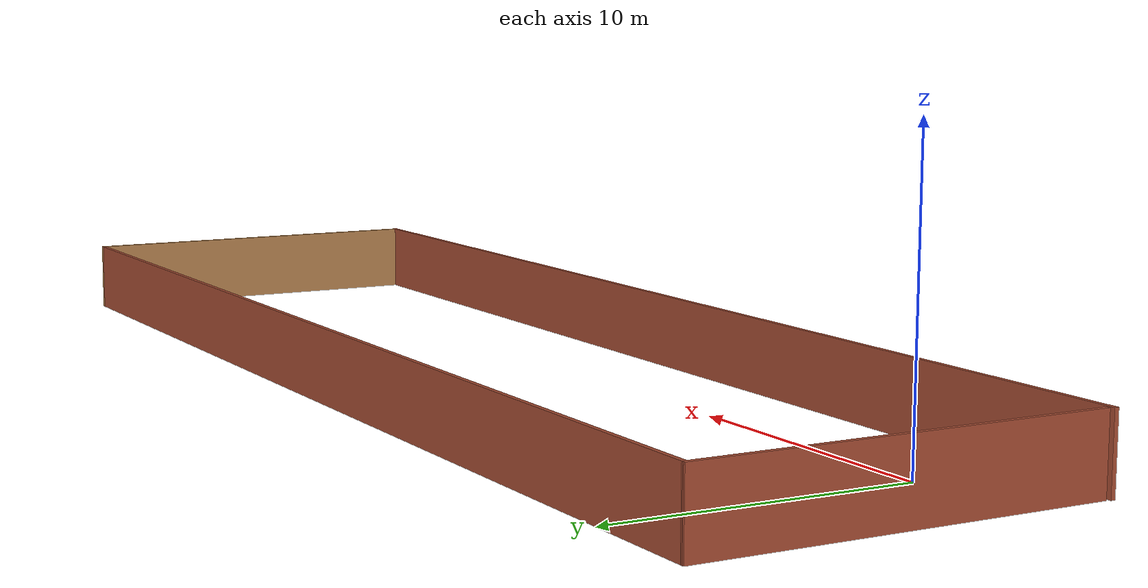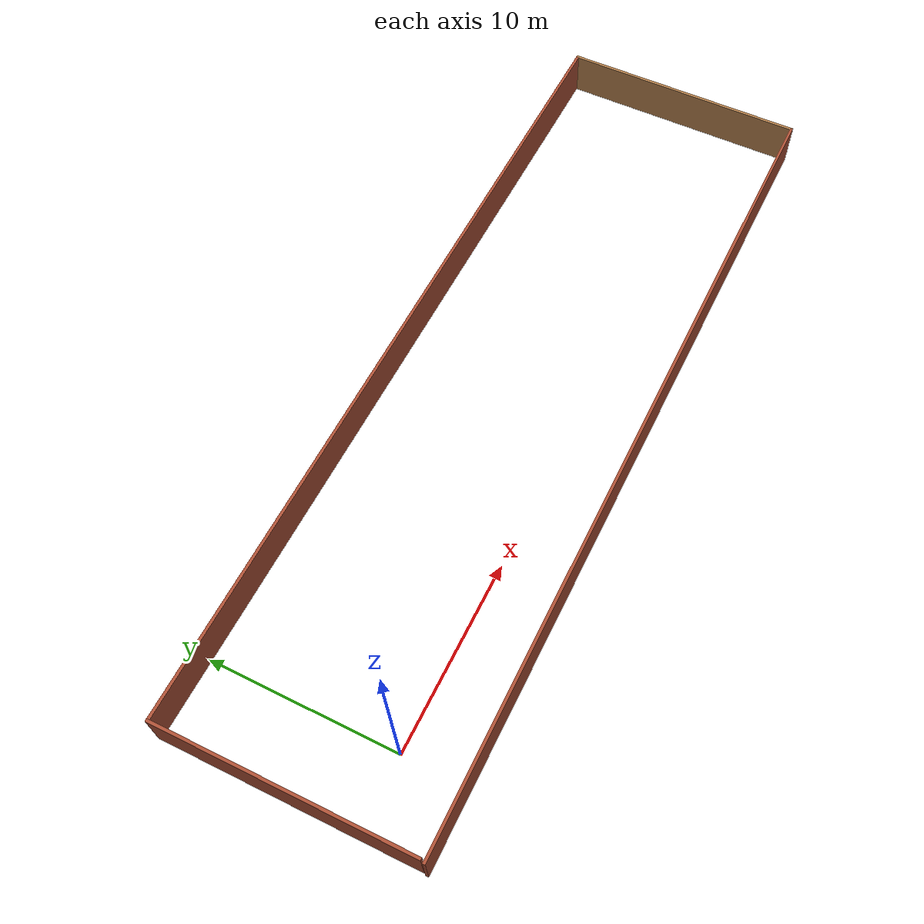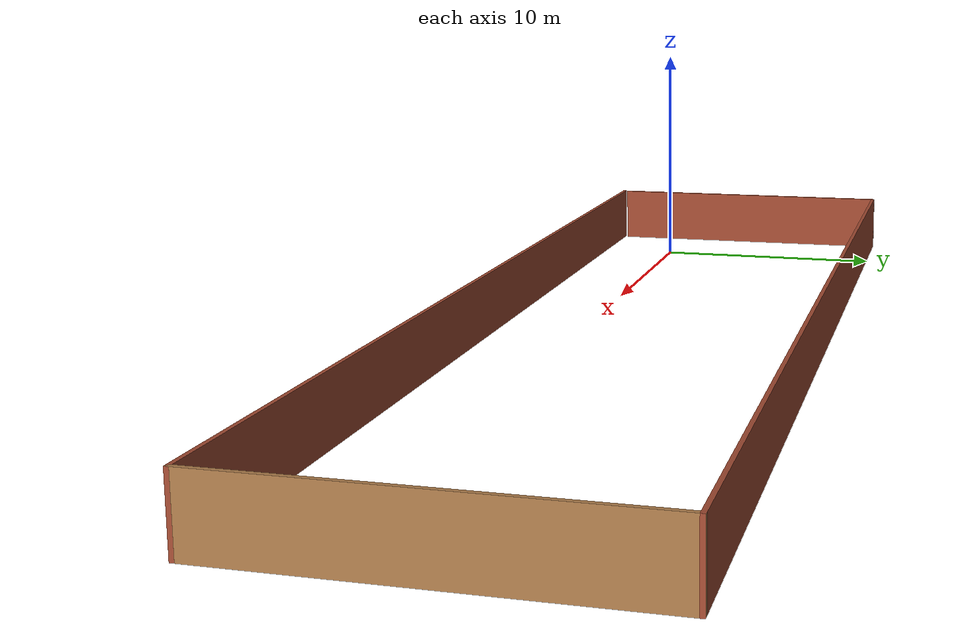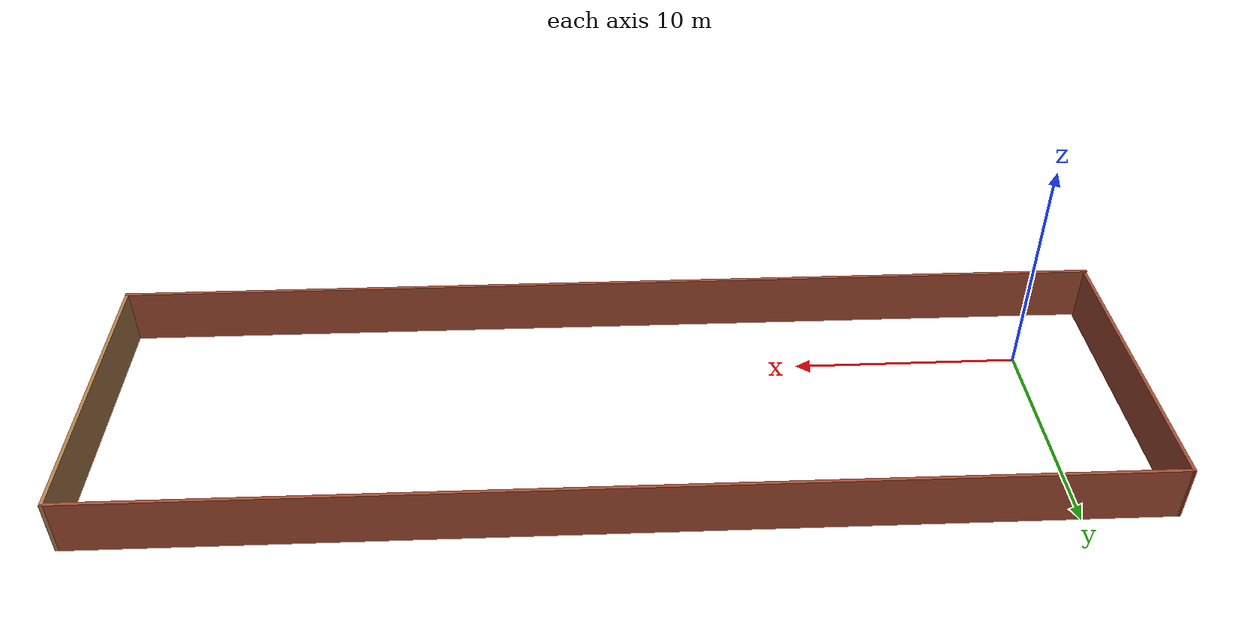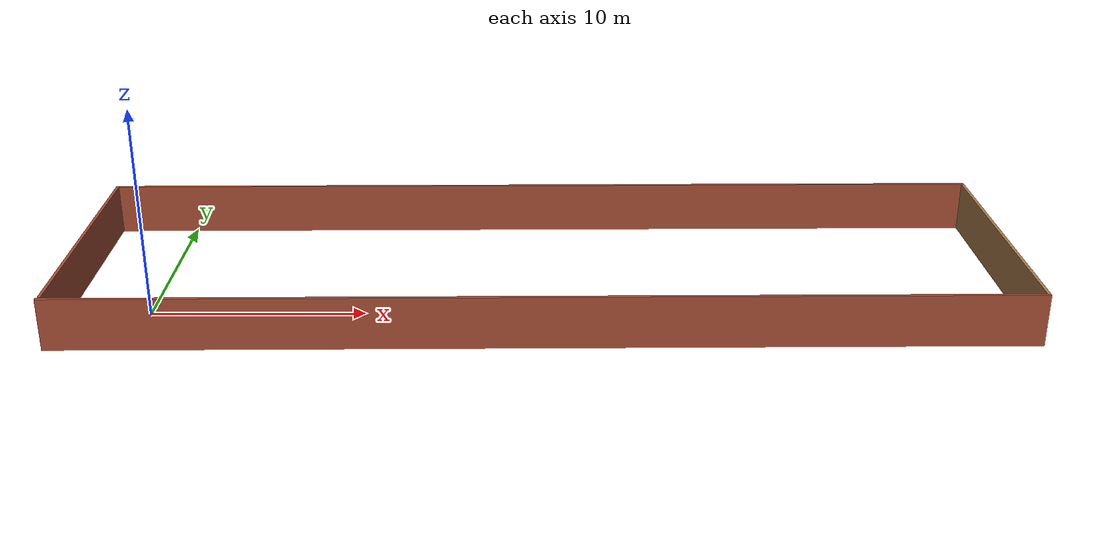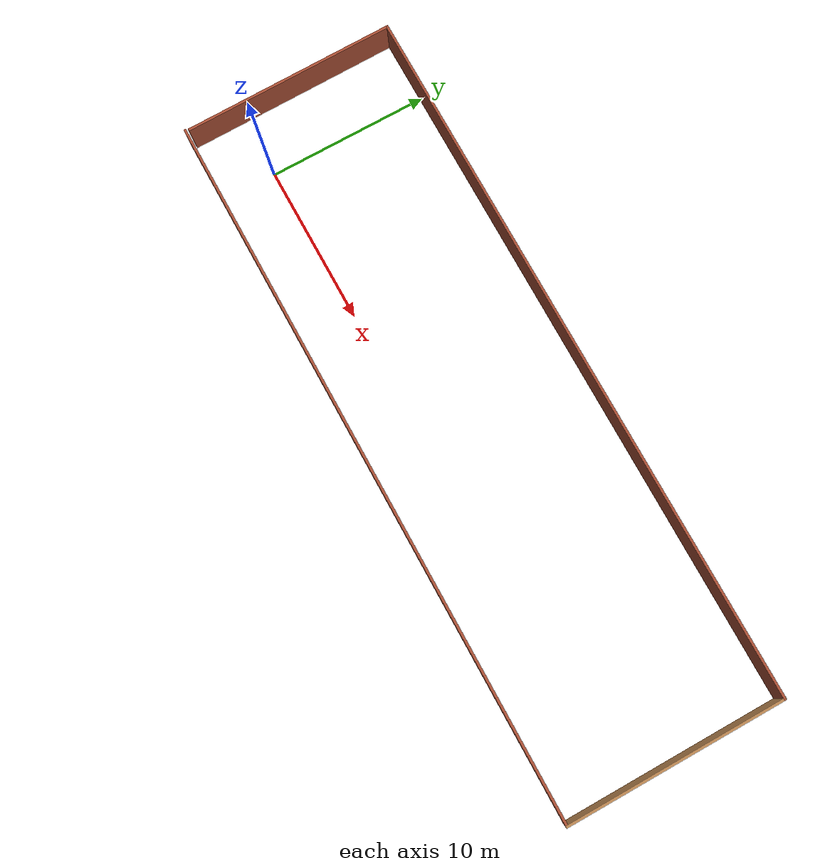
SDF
<?xml version='1.0'?>
<sdf version='1.7'>
  <model name='rl_world'>
    <pose>18.2429 3.2452 0 0 -0 0</pose>
    <link name='Wall_0'>
      <collision name='Wall_0_Collision'>
        <geometry>
          <box>
            <size>13.25 0.15 2.5</size>
          </box>
        </geometry>
        <pose>0 0 1.25 0 -0 0</pose>
      </collision>
      <visual name='Wall_0_Visual'>
        <pose>0 0 1.25 0 -0 0</pose>
        <geometry>
          <box>
            <size>13.25 0.15 2.5</size>
          </box>
        </geometry>
        <material>
          <script>
            <uri>file://media/materials/scripts/gazebo.material</uri>
            <name>Gazebo/Bricks</name>
          </script>
          <ambient>1 1 1 1</ambient>
        </material>
        <meta>
          <layer>0</layer>
        </meta>
      </visual>
      <pose>-22.1441 0.124794 0 0 -0 1.58014</pose>
    </link>
    <link name='Wall_1'>
      <collision name='Wall_1_Collision'>
        <geometry>
          <box>
            <size>44.5 0.15 2.5</size>
          </box>
        </geometry>
        <pose>0 0 1.25 0 -0 0</pose>
      </collision>
      <visual name='Wall_1_Visual'>
        <pose>0 0 1.25 0 -0 0</pose>
        <geometry>
          <box>
            <size>44.5 0.15 2.5</size>
          </box>
        </geometry>
        <material>
          <script>
            <uri>file://media/materials/scripts/gazebo.material</uri>
            <name>Gazebo/Bricks</name>
          </script>
          <ambient>1 1 1 1</ambient>
        </material>
        <meta>
          <layer>0</layer>
        </meta>
      </visual>
      <pose>0.030937 6.67479 0 0 -0 0</pose>
    </link>
    <link name='Wall_4'>
      <collision name='Wall_4_Collision'>
        <geometry>
          <box>
            <size>13.5 0.15 2.5</size>
          </box>
        </geometry>
        <pose>0 0 1.25 0 -0 0</pose>
      </collision>
      <visual name='Wall_4_Visual'>
        <pose>0 0 1.25 0 -0 0</pose>
        <geometry>
          <box>
            <size>13.5 0.15 2.5</size>
          </box>
        </geometry>
        <material>
          <script>
            <uri>file://media/materials/scripts/gazebo.material</uri>
            <name>Gazebo/Wood</name>
          </script>
          <ambient>1 1 1 1</ambient>
        </material>
        <meta>
          <layer>0</layer>
        </meta>
      </visual>
      <pose>22.2059 -0.000206 0 0 -0 -1.5708</pose>
    </link>
    <link name='Wall_5'>
      <collision name='Wall_5_Collision'>
        <geometry>
          <box>
            <size>44.5 0.15 2.5</size>
          </box>
        </geometry>
        <pose>0 0 1.25 0 -0 0</pose>
      </collision>
      <visual name='Wall_5_Visual'>
        <pose>0 0 1.25 0 -0 0</pose>
        <geometry>
          <box>
            <size>44.5 0.15 2.5</size>
          </box>
        </geometry>
        <material>
          <script>
            <uri>file://media/materials/scripts/gazebo.material</uri>
            <name>Gazebo/Bricks</name>
          </script>
          <ambient>1 1 1 1</ambient>
        </material>
        <meta>
          <layer>0</layer>
        </meta>
      </visual>
      <pose>0.030937 -6.67521 0 0 -0 3.14159</pose>
    </link>
    <static>1</static>
  </model>
</sdf>
